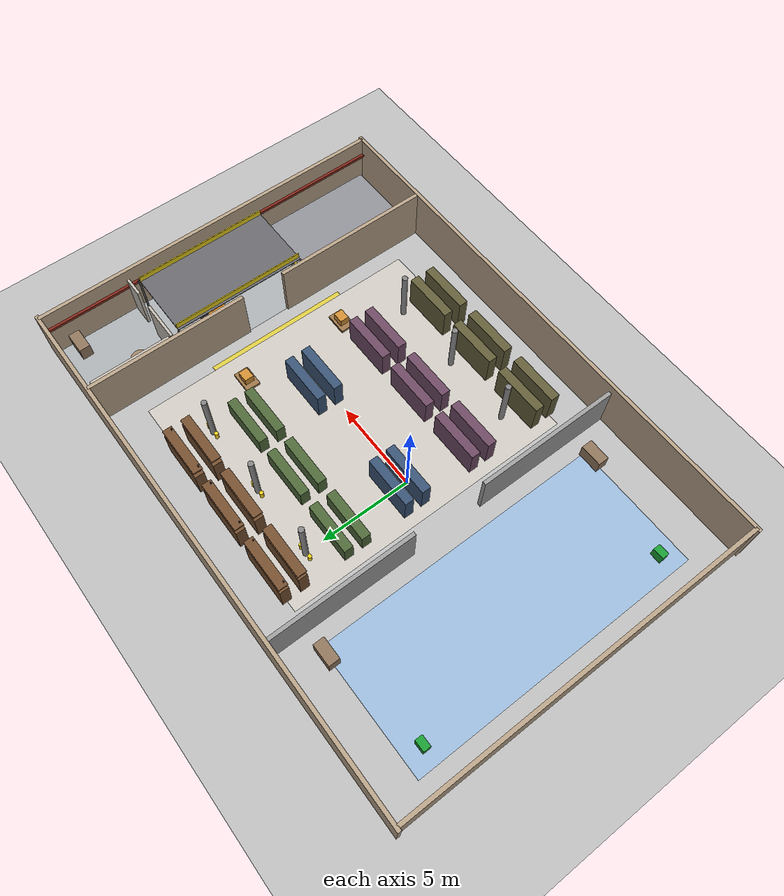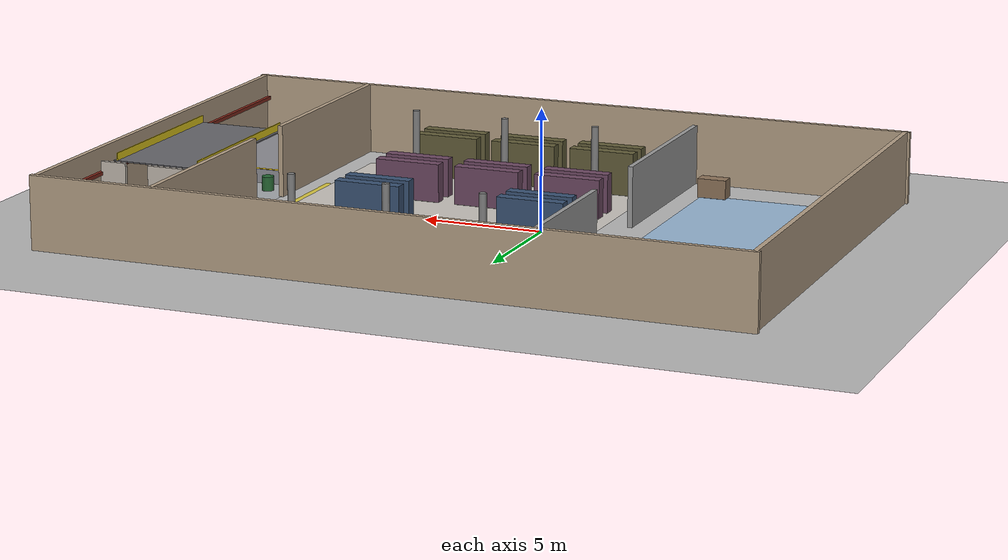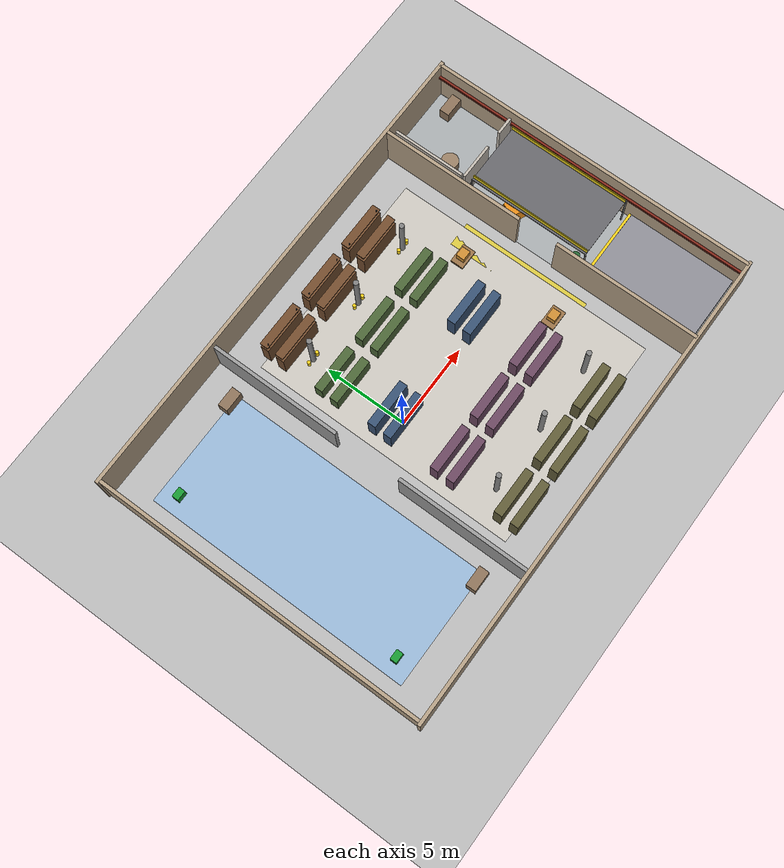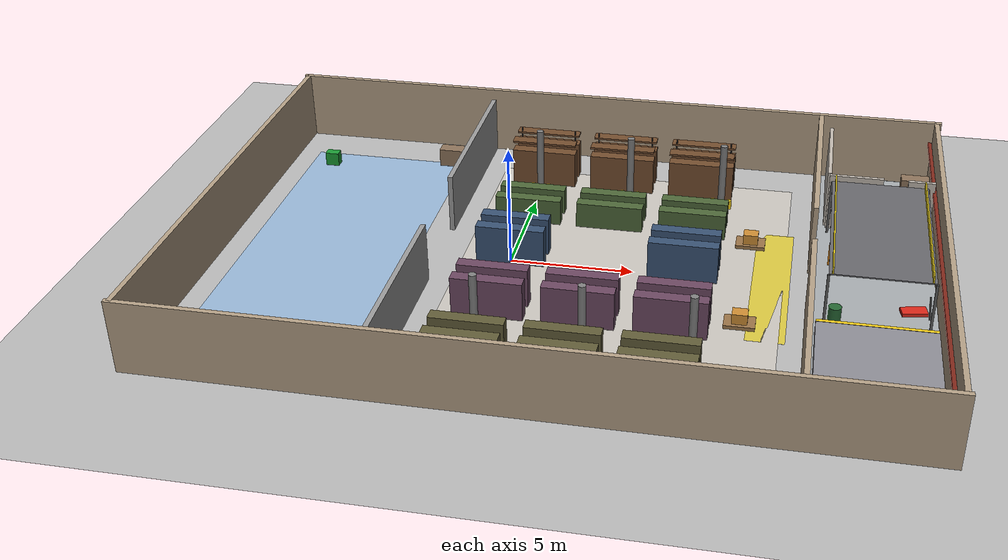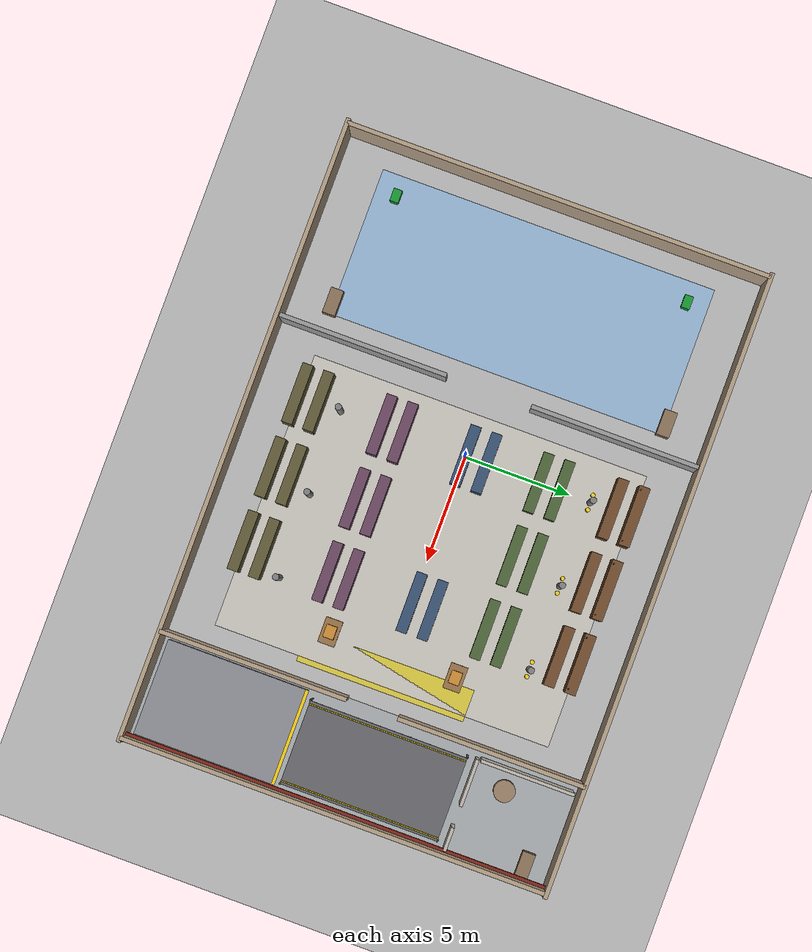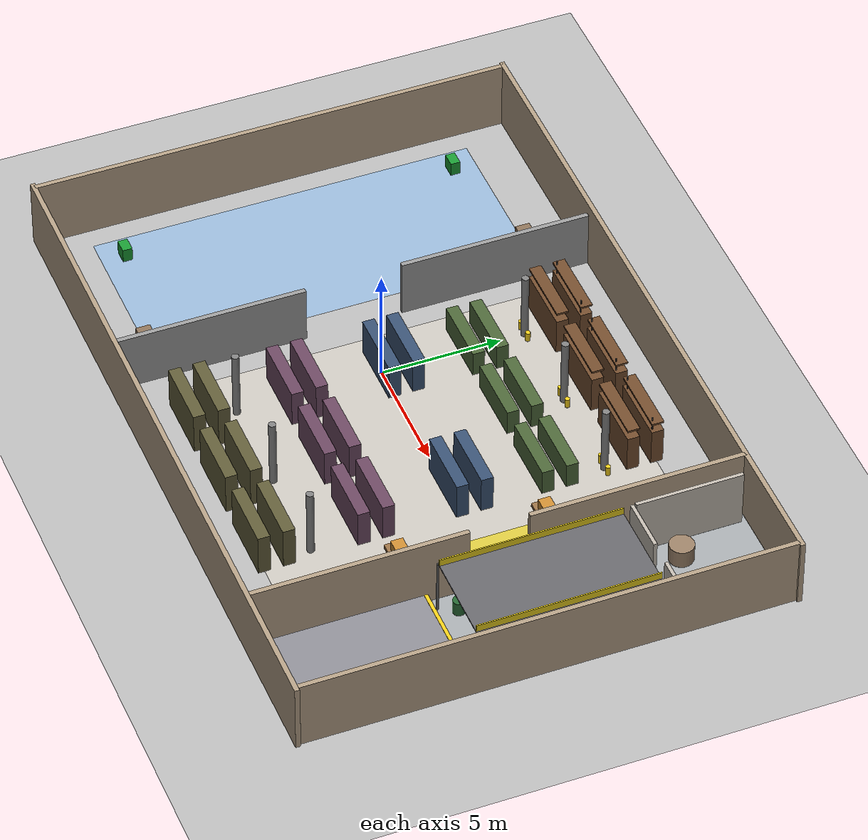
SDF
<sdf version="1.8">
 <world name="warehouse">
  <physics name="4ms" type="ignored">
   <max_step_size>0.004</max_step_size>
   <real_time_factor>1</real_time_factor>
  </physics>
  <plugin filename="ignition-gazebo-physics-system" name="ignition::gazebo::systems::Physics"/>
  <plugin filename="ignition-gazebo-user-commands-system" name="ignition::gazebo::systems::UserCommands"/>
  <plugin filename="ignition-gazebo-scene-broadcaster-system" name="ignition::gazebo::systems::SceneBroadcaster"/>
  <plugin filename="ignition-gazebo-sensors-system" name="ignition::gazebo::systems::Sensors">
   <render_engine>ogre2</render_engine>
  </plugin>
  <plugin filename="ignition-gazebo-contact-system" name="ignition::gazebo::systems::Contact"/>
  <plugin filename="ignition-gazebo-imu-system" name="ignition::gazebo::systems::Imu"/>
  <light name="sun" type="directional">
   <pose>0 0 20 0 0 0</pose>
   <intensity>1</intensity>
   <direction>-0.2 0.1 -0.9</direction>
   <diffuse>1.0 0.98 0.95 1</diffuse>
   <specular>0.3 0.3 0.3 1</specular>
  </light>
  <light name="light_west" type="point">
   <pose>-7 0 4 0 0 0</pose>
   <diffuse>0.8 0.8 0.9 1</diffuse>
   <specular>0.1 0.1 0.1 1</specular>
   <attenuation><range>15</range><linear>0.05</linear></attenuation>
  </light>
  <light name="light_east" type="point">
   <pose>5 0 4 0 0 0</pose>
   <diffuse>0.8 0.8 0.9 1</diffuse>
   <specular>0.1 0.1 0.1 1</specular>
   <attenuation><range>15</range><linear>0.05</linear></attenuation>
  </light>
  <light name="light_bay_n" type="point">
   <pose>14.5 4 4 0 0 0</pose>
   <diffuse>0.8 0.8 0.9 1</diffuse>
   <specular>0.1 0.1 0.1 1</specular>
   <attenuation><range>15</range><linear>0.05</linear></attenuation>
  </light>
  <light name="light_bay_s" type="point">
   <pose>14.5 -6 4 0 0 0</pose>
   <diffuse>0.8 0.8 0.9 1</diffuse>
   <specular>0.1 0.1 0.1 1</specular>
   <attenuation><range>15</range><linear>0.05</linear></attenuation>
  </light>
  <model name="ground_plane">
   <static>true</static>
   <link name="link">
    <collision name="c"><geometry><plane><normal>0 0 1</normal><size>100 100</size></plane></geometry></collision>
    <visual name="v">
     <geometry><plane><normal>0 0 1</normal><size>100 100</size></plane></geometry>
     <material><ambient>0.72 0.72 0.72 1</ambient><diffuse>0.72 0.72 0.72 1</diffuse></material>
    </visual>
   </link>
  </model>
  <model name="zone_staging">
   <static>true</static>
   <pose>-7.5 0 0.003 0 0 0</pose>
   <link name="link">
    <collision name="c"><geometry><box><size>7 16 0.005</size></box></geometry></collision>
    <visual name="v">
     <geometry><box><size>7 16 0.005</size></box></geometry>
     <material><ambient>0.55 0.75 0.95 0.6</ambient><diffuse>0.55 0.75 0.95 0.6</diffuse></material>
    </visual>
   </link>
  </model>
  <model name="zone_storage">
   <static>true</static>
   <pose>4.5 0 0.003 0 0 0</pose>
   <link name="link">
    <collision name="c"><geometry><box><size>13 16 0.005</size></box></geometry></collision>
    <visual name="v">
     <geometry><box><size>13 16 0.005</size></box></geometry>
     <material><ambient>0.88 0.85 0.80 0.6</ambient><diffuse>0.88 0.85 0.80 0.6</diffuse></material>
    </visual>
   </link>
  </model>
  <model name="zone_dock">
   <static>true</static>
   <pose>10.5 0 0.003 0 0 0</pose>
   <link name="link">
    <collision name="c"><geometry><box><size>1.5 8 0.005</size></box></geometry></collision>
    <visual name="v">
     <geometry><box><size>1.5 8 0.005</size></box></geometry>
     <material><ambient>0.95 0.85 0.1 0.7</ambient><diffuse>0.95 0.85 0.1 0.7</diffuse></material>
    </visual>
   </link>
  </model>
  <model name="zone_bay">
   <static>true</static>
   <pose>14.5 0 0.003 0 0 0</pose>
   <link name="link">
    <collision name="c"><geometry><box><size>5 20 0.005</size></box></geometry></collision>
    <visual name="v">
     <geometry><box><size>5 20 0.005</size></box></geometry>
     <material><ambient>0.65 0.68 0.70 0.6</ambient><diffuse>0.65 0.68 0.70 0.6</diffuse></material>
    </visual>
   </link>
  </model>
  <model name="wall_north">
   <static>true</static>
   <pose>2.5 10 1.5 0 0 0</pose>
   <link name="link">
    <collision name="c"><geometry><box><size>29.4 0.2 3</size></box></geometry></collision>
    <visual name="v">
     <geometry><box><size>29.4 0.2 3</size></box></geometry>
     <material><ambient>0.70 0.62 0.52 1</ambient><diffuse>0.70 0.62 0.52 1</diffuse></material>
    </visual>
   </link>
  </model>
  <model name="wall_south">
   <static>true</static>
   <pose>2.5 -10 1.5 0 0 0</pose>
   <link name="link">
    <collision name="c"><geometry><box><size>29.4 0.2 3</size></box></geometry></collision>
    <visual name="v">
     <geometry><box><size>29.4 0.2 3</size></box></geometry>
     <material><ambient>0.70 0.62 0.52 1</ambient><diffuse>0.70 0.62 0.52 1</diffuse></material>
    </visual>
   </link>
  </model>
  <model name="wall_east_n">
   <static>true</static>
   <pose>12 5.6 1.5 0 0 0</pose>
   <link name="link">
    <collision name="c"><geometry><box><size>0.2 8.8 3</size></box></geometry></collision>
    <visual name="v">
     <geometry><box><size>0.2 8.8 3</size></box></geometry>
     <material><ambient>0.70 0.62 0.52 1</ambient><diffuse>0.70 0.62 0.52 1</diffuse></material>
    </visual>
   </link>
  </model>
  <model name="wall_east_s">
   <static>true</static>
   <pose>12 -5.6 1.5 0 0 0</pose>
   <link name="link">
    <collision name="c"><geometry><box><size>0.2 8.8 3</size></box></geometry></collision>
    <visual name="v">
     <geometry><box><size>0.2 8.8 3</size></box></geometry>
     <material><ambient>0.70 0.62 0.52 1</ambient><diffuse>0.70 0.62 0.52 1</diffuse></material>
    </visual>
   </link>
  </model>
  <model name="wall_east_far">
   <static>true</static>
   <pose>17 0 1.5 0 0 0</pose>
   <link name="link">
    <collision name="c"><geometry><box><size>0.2 20 3</size></box></geometry></collision>
    <visual name="v">
     <geometry><box><size>0.2 20 3</size></box></geometry>
     <material><ambient>0.70 0.62 0.52 1</ambient><diffuse>0.70 0.62 0.52 1</diffuse></material>
    </visual>
   </link>
  </model>
  <model name="wall_west">
   <static>true</static>
   <pose>-12 0 1.5 0 0 0</pose>
   <link name="link">
    <collision name="c"><geometry><box><size>0.2 20 3</size></box></geometry></collision>
    <visual name="v">
     <geometry><box><size>0.2 20 3</size></box></geometry>
     <material><ambient>0.70 0.62 0.52 1</ambient><diffuse>0.70 0.62 0.52 1</diffuse></material>
    </visual>
   </link>
  </model>
  <model name="sep_north">
   <static>true</static>
   <pose>-3 6 1.25 0 0 0</pose>
   <link name="link">
    <collision name="c"><geometry><box><size>0.2 8 2.5</size></box></geometry></collision>
    <visual name="v">
     <geometry><box><size>0.2 8 2.5</size></box></geometry>
     <material><ambient>0.60 0.60 0.60 1</ambient><diffuse>0.60 0.60 0.60 1</diffuse></material>
    </visual>
   </link>
  </model>
  <model name="sep_south">
   <static>true</static>
   <pose>-3 -6 1.25 0 0 0</pose>
   <link name="link">
    <collision name="c"><geometry><box><size>0.2 8 2.5</size></box></geometry></collision>
    <visual name="v">
     <geometry><box><size>0.2 8 2.5</size></box></geometry>
     <material><ambient>0.60 0.60 0.60 1</ambient><diffuse>0.60 0.60 0.60 1</diffuse></material>
    </visual>
   </link>
  </model>
  <model name="pillar_A1">
   <static>true</static>
   <pose>0  6 1.5 0 0 0</pose>
   <link name="link">
    <collision name="c">
     <geometry><cylinder><radius>0.15</radius><length>3</length></cylinder></geometry>
    </collision>
    <visual name="v">
     <geometry><cylinder><radius>0.15</radius><length>3</length></cylinder></geometry>
     <material><ambient>0.5 0.5 0.5 1</ambient><diffuse>0.5 0.5 0.5 1</diffuse></material>
    </visual>
   </link>
  </model>
  <model name="pillar_A2">
   <static>true</static>
   <pose>0 -6 1.5 0 0 0</pose>
   <link name="link">
    <collision name="c">
     <geometry><cylinder><radius>0.15</radius><length>3</length></cylinder></geometry>
    </collision>
    <visual name="v">
     <geometry><cylinder><radius>0.15</radius><length>3</length></cylinder></geometry>
     <material><ambient>0.5 0.5 0.5 1</ambient><diffuse>0.5 0.5 0.5 1</diffuse></material>
    </visual>
   </link>
  </model>
  <model name="pillar_B1">
   <static>true</static>
   <pose>4  6 1.5 0 0 0</pose>
   <link name="link">
    <collision name="c">
     <geometry><cylinder><radius>0.15</radius><length>3</length></cylinder></geometry>
    </collision>
    <visual name="v">
     <geometry><cylinder><radius>0.15</radius><length>3</length></cylinder></geometry>
     <material><ambient>0.5 0.5 0.5 1</ambient><diffuse>0.5 0.5 0.5 1</diffuse></material>
    </visual>
   </link>
  </model>
  <model name="pillar_B2">
   <static>true</static>
   <pose>4 -6 1.5 0 0 0</pose>
   <link name="link">
    <collision name="c">
     <geometry><cylinder><radius>0.15</radius><length>3</length></cylinder></geometry>
    </collision>
    <visual name="v">
     <geometry><cylinder><radius>0.15</radius><length>3</length></cylinder></geometry>
     <material><ambient>0.5 0.5 0.5 1</ambient><diffuse>0.5 0.5 0.5 1</diffuse></material>
    </visual>
   </link>
  </model>
  <model name="pillar_C1">
   <static>true</static>
   <pose>8  6 1.5 0 0 0</pose>
   <link name="link">
    <collision name="c">
     <geometry><cylinder><radius>0.15</radius><length>3</length></cylinder></geometry>
    </collision>
    <visual name="v">
     <geometry><cylinder><radius>0.15</radius><length>3</length></cylinder></geometry>
     <material><ambient>0.5 0.5 0.5 1</ambient><diffuse>0.5 0.5 0.5 1</diffuse></material>
    </visual>
   </link>
  </model>
  <model name="pillar_C2">
   <static>true</static>
   <pose>8 -6 1.5 0 0 0</pose>
   <link name="link">
    <collision name="c">
     <geometry><cylinder><radius>0.15</radius><length>3</length></cylinder></geometry>
    </collision>
    <visual name="v">
     <geometry><cylinder><radius>0.15</radius><length>3</length></cylinder></geometry>
     <material><ambient>0.5 0.5 0.5 1</ambient><diffuse>0.5 0.5 0.5 1</diffuse></material>
    </visual>
   </link>
  </model>
  <model name="sh_1f_1">
   <static>true</static>
   <pose>0   8.0 0.8 0 0 0</pose>
   <link name="link">
    <collision name="c"><geometry><box><size>2.8 0.5 1.6</size></box></geometry></collision>
    <visual name="v">
     <geometry><box><size>2.8 0.5 1.6</size></box></geometry>
     <material><ambient>0.45 0.30 0.18 1</ambient><diffuse>0.45 0.30 0.18 1</diffuse></material>
    </visual>
   </link>
  </model>
  <model name="sh_1f_2">
   <static>true</static>
   <pose>3.5 8.0 0.8 0 0 0</pose>
   <link name="link">
    <collision name="c"><geometry><box><size>2.8 0.5 1.6</size></box></geometry></collision>
    <visual name="v">
     <geometry><box><size>2.8 0.5 1.6</size></box></geometry>
     <material><ambient>0.45 0.30 0.18 1</ambient><diffuse>0.45 0.30 0.18 1</diffuse></material>
    </visual>
   </link>
  </model>
  <model name="sh_1f_3">
   <static>true</static>
   <pose>7.0 8.0 0.8 0 0 0</pose>
   <link name="link">
    <collision name="c"><geometry><box><size>2.8 0.5 1.6</size></box></geometry></collision>
    <visual name="v">
     <geometry><box><size>2.8 0.5 1.6</size></box></geometry>
     <material><ambient>0.45 0.30 0.18 1</ambient><diffuse>0.45 0.30 0.18 1</diffuse></material>
    </visual>
   </link>
  </model>
  <model name="sh_1b_1">
   <static>true</static>
   <pose>0   7.0 0.8 0 0 0</pose>
   <link name="link">
    <collision name="c"><geometry><box><size>2.8 0.5 1.6</size></box></geometry></collision>
    <visual name="v">
     <geometry><box><size>2.8 0.5 1.6</size></box></geometry>
     <material><ambient>0.45 0.30 0.18 1</ambient><diffuse>0.45 0.30 0.18 1</diffuse></material>
    </visual>
   </link>
  </model>
  <model name="sh_1b_2">
   <static>true</static>
   <pose>3.5 7.0 0.8 0 0 0</pose>
   <link name="link">
    <collision name="c"><geometry><box><size>2.8 0.5 1.6</size></box></geometry></collision>
    <visual name="v">
     <geometry><box><size>2.8 0.5 1.6</size></box></geometry>
     <material><ambient>0.45 0.30 0.18 1</ambient><diffuse>0.45 0.30 0.18 1</diffuse></material>
    </visual>
   </link>
  </model>
  <model name="sh_1b_3">
   <static>true</static>
   <pose>7.0 7.0 0.8 0 0 0</pose>
   <link name="link">
    <collision name="c"><geometry><box><size>2.8 0.5 1.6</size></box></geometry></collision>
    <visual name="v">
     <geometry><box><size>2.8 0.5 1.6</size></box></geometry>
     <material><ambient>0.45 0.30 0.18 1</ambient><diffuse>0.45 0.30 0.18 1</diffuse></material>
    </visual>
   </link>
  </model>
  <model name="sh_1f_1_post_a">
   <static>true</static>
   <pose>-1.2 7.85 1.1 0 0 0</pose>
   <link name="link">
    <collision name="c">
     <geometry><cylinder><radius>0.03</radius><length>2.2</length></cylinder></geometry>
    </collision>
    <visual name="v">
     <geometry><cylinder><radius>0.03</radius><length>2.2</length></cylinder></geometry>
     <material><ambient>0.3 0.3 0.3 1</ambient><diffuse>0.3 0.3 0.3 1</diffuse></material>
    </visual>
   </link>
  </model>
  <model name="sh_1f_1_post_b">
   <static>true</static>
   <pose>1.2 7.85 1.1 0 0 0</pose>
   <link name="link">
    <collision name="c">
     <geometry><cylinder><radius>0.03</radius><length>2.2</length></cylinder></geometry>
    </collision>
    <visual name="v">
     <geometry><cylinder><radius>0.03</radius><length>2.2</length></cylinder></geometry>
     <material><ambient>0.3 0.3 0.3 1</ambient><diffuse>0.3 0.3 0.3 1</diffuse></material>
    </visual>
   </link>
  </model>
  <model name="sh_1f_1_upper">
   <static>true</static>
   <pose>0 8.0 2.0 0 0 0</pose>
   <link name="link">
    <collision name="c"><geometry><box><size>2.8 0.5 0.08</size></box></geometry></collision>
    <visual name="v">
     <geometry><box><size>2.8 0.5 0.08</size></box></geometry>
     <material><ambient>0.45 0.30 0.18 1</ambient><diffuse>0.45 0.30 0.18 1</diffuse></material>
    </visual>
   </link>
  </model>
  <model name="sh_1f_2_post_a">
   <static>true</static>
   <pose>2.3 7.85 1.1 0 0 0</pose>
   <link name="link">
    <collision name="c">
     <geometry><cylinder><radius>0.03</radius><length>2.2</length></cylinder></geometry>
    </collision>
    <visual name="v">
     <geometry><cylinder><radius>0.03</radius><length>2.2</length></cylinder></geometry>
     <material><ambient>0.3 0.3 0.3 1</ambient><diffuse>0.3 0.3 0.3 1</diffuse></material>
    </visual>
   </link>
  </model>
  <model name="sh_1f_2_post_b">
   <static>true</static>
   <pose>4.7 7.85 1.1 0 0 0</pose>
   <link name="link">
    <collision name="c">
     <geometry><cylinder><radius>0.03</radius><length>2.2</length></cylinder></geometry>
    </collision>
    <visual name="v">
     <geometry><cylinder><radius>0.03</radius><length>2.2</length></cylinder></geometry>
     <material><ambient>0.3 0.3 0.3 1</ambient><diffuse>0.3 0.3 0.3 1</diffuse></material>
    </visual>
   </link>
  </model>
  <model name="sh_1f_2_upper">
   <static>true</static>
   <pose>3.5 8.0 2.0 0 0 0</pose>
   <link name="link">
    <collision name="c"><geometry><box><size>2.8 0.5 0.08</size></box></geometry></collision>
    <visual name="v">
     <geometry><box><size>2.8 0.5 0.08</size></box></geometry>
     <material><ambient>0.45 0.30 0.18 1</ambient><diffuse>0.45 0.30 0.18 1</diffuse></material>
    </visual>
   </link>
  </model>
  <model name="sh_1f_3_post_a">
   <static>true</static>
   <pose>5.8 7.85 1.1 0 0 0</pose>
   <link name="link">
    <collision name="c">
     <geometry><cylinder><radius>0.03</radius><length>2.2</length></cylinder></geometry>
    </collision>
    <visual name="v">
     <geometry><cylinder><radius>0.03</radius><length>2.2</length></cylinder></geometry>
     <material><ambient>0.3 0.3 0.3 1</ambient><diffuse>0.3 0.3 0.3 1</diffuse></material>
    </visual>
   </link>
  </model>
  <model name="sh_1f_3_post_b">
   <static>true</static>
   <pose>8.2 7.85 1.1 0 0 0</pose>
   <link name="link">
    <collision name="c">
     <geometry><cylinder><radius>0.03</radius><length>2.2</length></cylinder></geometry>
    </collision>
    <visual name="v">
     <geometry><cylinder><radius>0.03</radius><length>2.2</length></cylinder></geometry>
     <material><ambient>0.3 0.3 0.3 1</ambient><diffuse>0.3 0.3 0.3 1</diffuse></material>
    </visual>
   </link>
  </model>
  <model name="sh_1f_3_upper">
   <static>true</static>
   <pose>7.0 8.0 2.0 0 0 0</pose>
   <link name="link">
    <collision name="c"><geometry><box><size>2.8 0.5 0.08</size></box></geometry></collision>
    <visual name="v">
     <geometry><box><size>2.8 0.5 0.08</size></box></geometry>
     <material><ambient>0.45 0.30 0.18 1</ambient><diffuse>0.45 0.30 0.18 1</diffuse></material>
    </visual>
   </link>
  </model>
  <model name="sh_1b_1_upper">
   <static>true</static>
   <pose>0   7.0 2.0 0 0 0</pose>
   <link name="link">
    <collision name="c"><geometry><box><size>2.8 0.5 0.08</size></box></geometry></collision>
    <visual name="v">
     <geometry><box><size>2.8 0.5 0.08</size></box></geometry>
     <material><ambient>0.45 0.30 0.18 1</ambient><diffuse>0.45 0.30 0.18 1</diffuse></material>
    </visual>
   </link>
  </model>
  <model name="sh_1b_2_upper">
   <static>true</static>
   <pose>3.5 7.0 2.0 0 0 0</pose>
   <link name="link">
    <collision name="c"><geometry><box><size>2.8 0.5 0.08</size></box></geometry></collision>
    <visual name="v">
     <geometry><box><size>2.8 0.5 0.08</size></box></geometry>
     <material><ambient>0.45 0.30 0.18 1</ambient><diffuse>0.45 0.30 0.18 1</diffuse></material>
    </visual>
   </link>
  </model>
  <model name="sh_1b_3_upper">
   <static>true</static>
   <pose>7.0 7.0 2.0 0 0 0</pose>
   <link name="link">
    <collision name="c"><geometry><box><size>2.8 0.5 0.08</size></box></geometry></collision>
    <visual name="v">
     <geometry><box><size>2.8 0.5 0.08</size></box></geometry>
     <material><ambient>0.45 0.30 0.18 1</ambient><diffuse>0.45 0.30 0.18 1</diffuse></material>
    </visual>
   </link>
  </model>
  <model name="sh_2f_1">
   <static>true</static>
   <pose>0   4.5 0.55 0 0 0</pose>
   <link name="link">
    <collision name="c"><geometry><box><size>2.8 0.5 1.1</size></box></geometry></collision>
    <visual name="v">
     <geometry><box><size>2.8 0.5 1.1</size></box></geometry>
     <material><ambient>0.30 0.40 0.22 1</ambient><diffuse>0.30 0.40 0.22 1</diffuse></material>
    </visual>
   </link>
  </model>
  <model name="sh_2f_2">
   <static>true</static>
   <pose>3.5 4.5 0.55 0 0 0</pose>
   <link name="link">
    <collision name="c"><geometry><box><size>2.8 0.5 1.1</size></box></geometry></collision>
    <visual name="v">
     <geometry><box><size>2.8 0.5 1.1</size></box></geometry>
     <material><ambient>0.30 0.40 0.22 1</ambient><diffuse>0.30 0.40 0.22 1</diffuse></material>
    </visual>
   </link>
  </model>
  <model name="sh_2f_3">
   <static>true</static>
   <pose>7.0 4.5 0.55 0 0 0</pose>
   <link name="link">
    <collision name="c"><geometry><box><size>2.8 0.5 1.1</size></box></geometry></collision>
    <visual name="v">
     <geometry><box><size>2.8 0.5 1.1</size></box></geometry>
     <material><ambient>0.30 0.40 0.22 1</ambient><diffuse>0.30 0.40 0.22 1</diffuse></material>
    </visual>
   </link>
  </model>
  <model name="sh_2b_1">
   <static>true</static>
   <pose>0   3.5 0.55 0 0 0</pose>
   <link name="link">
    <collision name="c"><geometry><box><size>2.8 0.5 1.1</size></box></geometry></collision>
    <visual name="v">
     <geometry><box><size>2.8 0.5 1.1</size></box></geometry>
     <material><ambient>0.30 0.40 0.22 1</ambient><diffuse>0.30 0.40 0.22 1</diffuse></material>
    </visual>
   </link>
  </model>
  <model name="sh_2b_2">
   <static>true</static>
   <pose>3.5 3.5 0.55 0 0 0</pose>
   <link name="link">
    <collision name="c"><geometry><box><size>2.8 0.5 1.1</size></box></geometry></collision>
    <visual name="v">
     <geometry><box><size>2.8 0.5 1.1</size></box></geometry>
     <material><ambient>0.30 0.40 0.22 1</ambient><diffuse>0.30 0.40 0.22 1</diffuse></material>
    </visual>
   </link>
  </model>
  <model name="sh_2b_3">
   <static>true</static>
   <pose>7.0 3.5 0.55 0 0 0</pose>
   <link name="link">
    <collision name="c"><geometry><box><size>2.8 0.5 1.1</size></box></geometry></collision>
    <visual name="v">
     <geometry><box><size>2.8 0.5 1.1</size></box></geometry>
     <material><ambient>0.30 0.40 0.22 1</ambient><diffuse>0.30 0.40 0.22 1</diffuse></material>
    </visual>
   </link>
  </model>
  <model name="sh_3f_1">
   <static>true</static>
   <pose>0   1.0 0.8 0 0 0</pose>
   <link name="link">
    <collision name="c"><geometry><box><size>2.8 0.5 1.6</size></box></geometry></collision>
    <visual name="v">
     <geometry><box><size>2.8 0.5 1.6</size></box></geometry>
     <material><ambient>0.22 0.32 0.45 1</ambient><diffuse>0.22 0.32 0.45 1</diffuse></material>
    </visual>
   </link>
  </model>
  <model name="sh_3f_3">
   <static>true</static>
   <pose>7.0 1.0 0.8 0 0 0</pose>
   <link name="link">
    <collision name="c"><geometry><box><size>2.8 0.5 1.6</size></box></geometry></collision>
    <visual name="v">
     <geometry><box><size>2.8 0.5 1.6</size></box></geometry>
     <material><ambient>0.22 0.32 0.45 1</ambient><diffuse>0.22 0.32 0.45 1</diffuse></material>
    </visual>
   </link>
  </model>
  <model name="sh_3b_1">
   <static>true</static>
   <pose>0   0.0 0.8 0 0 0</pose>
   <link name="link">
    <collision name="c"><geometry><box><size>2.8 0.5 1.6</size></box></geometry></collision>
    <visual name="v">
     <geometry><box><size>2.8 0.5 1.6</size></box></geometry>
     <material><ambient>0.22 0.32 0.45 1</ambient><diffuse>0.22 0.32 0.45 1</diffuse></material>
    </visual>
   </link>
  </model>
  <model name="sh_3b_3">
   <static>true</static>
   <pose>7.0 0.0 0.8 0 0 0</pose>
   <link name="link">
    <collision name="c"><geometry><box><size>2.8 0.5 1.6</size></box></geometry></collision>
    <visual name="v">
     <geometry><box><size>2.8 0.5 1.6</size></box></geometry>
     <material><ambient>0.22 0.32 0.45 1</ambient><diffuse>0.22 0.32 0.45 1</diffuse></material>
    </visual>
   </link>
  </model>
  <model name="sh_4f_1">
   <static>true</static>
   <pose>0  -3.0 0.8 0 0 0</pose>
   <link name="link">
    <collision name="c"><geometry><box><size>2.8 0.5 1.6</size></box></geometry></collision>
    <visual name="v">
     <geometry><box><size>2.8 0.5 1.6</size></box></geometry>
     <material><ambient>0.42 0.28 0.38 1</ambient><diffuse>0.42 0.28 0.38 1</diffuse></material>
    </visual>
   </link>
  </model>
  <model name="sh_4f_2">
   <static>true</static>
   <pose>3.5 -3.0 0.8 0 0 0</pose>
   <link name="link">
    <collision name="c"><geometry><box><size>2.8 0.5 1.6</size></box></geometry></collision>
    <visual name="v">
     <geometry><box><size>2.8 0.5 1.6</size></box></geometry>
     <material><ambient>0.42 0.28 0.38 1</ambient><diffuse>0.42 0.28 0.38 1</diffuse></material>
    </visual>
   </link>
  </model>
  <model name="sh_4f_3">
   <static>true</static>
   <pose>7.0 -3.0 0.8 0 0 0</pose>
   <link name="link">
    <collision name="c"><geometry><box><size>2.8 0.5 1.6</size></box></geometry></collision>
    <visual name="v">
     <geometry><box><size>2.8 0.5 1.6</size></box></geometry>
     <material><ambient>0.42 0.28 0.38 1</ambient><diffuse>0.42 0.28 0.38 1</diffuse></material>
    </visual>
   </link>
  </model>
  <model name="sh_4b_1">
   <static>true</static>
   <pose>0  -4.0 0.8 0 0 0</pose>
   <link name="link">
    <collision name="c"><geometry><box><size>2.8 0.5 1.6</size></box></geometry></collision>
    <visual name="v">
     <geometry><box><size>2.8 0.5 1.6</size></box></geometry>
     <material><ambient>0.42 0.28 0.38 1</ambient><diffuse>0.42 0.28 0.38 1</diffuse></material>
    </visual>
   </link>
  </model>
  <model name="sh_4b_2">
   <static>true</static>
   <pose>3.5 -4.0 0.8 0 0 0</pose>
   <link name="link">
    <collision name="c"><geometry><box><size>2.8 0.5 1.6</size></box></geometry></collision>
    <visual name="v">
     <geometry><box><size>2.8 0.5 1.6</size></box></geometry>
     <material><ambient>0.42 0.28 0.38 1</ambient><diffuse>0.42 0.28 0.38 1</diffuse></material>
    </visual>
   </link>
  </model>
  <model name="sh_4b_3">
   <static>true</static>
   <pose>7.0 -4.0 0.8 0 0 0</pose>
   <link name="link">
    <collision name="c"><geometry><box><size>2.8 0.5 1.6</size></box></geometry></collision>
    <visual name="v">
     <geometry><box><size>2.8 0.5 1.6</size></box></geometry>
     <material><ambient>0.42 0.28 0.38 1</ambient><diffuse>0.42 0.28 0.38 1</diffuse></material>
    </visual>
   </link>
  </model>
  <model name="sh_5f_1">
   <static>true</static>
   <pose>0  -7.0 0.9 0 0 0</pose>
   <link name="link">
    <collision name="c"><geometry><box><size>2.8 0.5 1.8</size></box></geometry></collision>
    <visual name="v">
     <geometry><box><size>2.8 0.5 1.8</size></box></geometry>
     <material><ambient>0.38 0.36 0.22 1</ambient><diffuse>0.38 0.36 0.22 1</diffuse></material>
    </visual>
   </link>
  </model>
  <model name="sh_5f_2">
   <static>true</static>
   <pose>3.5 -7.0 0.9 0 0 0</pose>
   <link name="link">
    <collision name="c"><geometry><box><size>2.8 0.5 1.8</size></box></geometry></collision>
    <visual name="v">
     <geometry><box><size>2.8 0.5 1.8</size></box></geometry>
     <material><ambient>0.38 0.36 0.22 1</ambient><diffuse>0.38 0.36 0.22 1</diffuse></material>
    </visual>
   </link>
  </model>
  <model name="sh_5f_3">
   <static>true</static>
   <pose>7.0 -7.0 0.9 0 0 0</pose>
   <link name="link">
    <collision name="c"><geometry><box><size>2.8 0.5 1.8</size></box></geometry></collision>
    <visual name="v">
     <geometry><box><size>2.8 0.5 1.8</size></box></geometry>
     <material><ambient>0.38 0.36 0.22 1</ambient><diffuse>0.38 0.36 0.22 1</diffuse></material>
    </visual>
   </link>
  </model>
  <model name="sh_5b_1">
   <static>true</static>
   <pose>0  -8.0 0.9 0 0 0</pose>
   <link name="link">
    <collision name="c"><geometry><box><size>2.8 0.5 1.8</size></box></geometry></collision>
    <visual name="v">
     <geometry><box><size>2.8 0.5 1.8</size></box></geometry>
     <material><ambient>0.38 0.36 0.22 1</ambient><diffuse>0.38 0.36 0.22 1</diffuse></material>
    </visual>
   </link>
  </model>
  <model name="sh_5b_2">
   <static>true</static>
   <pose>3.5 -8.0 0.9 0 0 0</pose>
   <link name="link">
    <collision name="c"><geometry><box><size>2.8 0.5 1.8</size></box></geometry></collision>
    <visual name="v">
     <geometry><box><size>2.8 0.5 1.8</size></box></geometry>
     <material><ambient>0.38 0.36 0.22 1</ambient><diffuse>0.38 0.36 0.22 1</diffuse></material>
    </visual>
   </link>
  </model>
  <model name="sh_5b_3">
   <static>true</static>
   <pose>7.0 -8.0 0.9 0 0 0</pose>
   <link name="link">
    <collision name="c"><geometry><box><size>2.8 0.5 1.8</size></box></geometry></collision>
    <visual name="v">
     <geometry><box><size>2.8 0.5 1.8</size></box></geometry>
     <material><ambient>0.38 0.36 0.22 1</ambient><diffuse>0.38 0.36 0.22 1</diffuse></material>
    </visual>
   </link>
  </model>
  <model name="charger_nw">
   <static>true</static>
   <pose>-10 7 0.3 0 0 0</pose>
   <link name="link">
    <collision name="c"><geometry><box><size>0.6 0.4 0.6</size></box></geometry></collision>
    <visual name="v">
     <geometry><box><size>0.6 0.4 0.6</size></box></geometry>
     <material><ambient>0.1 0.6 0.2 1</ambient><diffuse>0.1 0.6 0.2 1</diffuse></material>
    </visual>
   </link>
  </model>
  <model name="charger_sw">
   <static>true</static>
   <pose>-10 -7 0.3 0 0 0</pose>
   <link name="link">
    <collision name="c"><geometry><box><size>0.6 0.4 0.6</size></box></geometry></collision>
    <visual name="v">
     <geometry><box><size>0.6 0.4 0.6</size></box></geometry>
     <material><ambient>0.1 0.6 0.2 1</ambient><diffuse>0.1 0.6 0.2 1</diffuse></material>
    </visual>
   </link>
  </model>
  <model name="desk_1">
   <static>true</static>
   <pose>-4.5 8 0.4 0 0 0</pose>
   <link name="link">
    <collision name="c"><geometry><box><size>1.2 0.6 0.8</size></box></geometry></collision>
    <visual name="v">
     <geometry><box><size>1.2 0.6 0.8</size></box></geometry>
     <material><ambient>0.55 0.45 0.35 1</ambient><diffuse>0.55 0.45 0.35 1</diffuse></material>
    </visual>
   </link>
  </model>
  <model name="desk_2">
   <static>true</static>
   <pose>-4.5 -8 0.4 0 0 0</pose>
   <link name="link">
    <collision name="c"><geometry><box><size>1.2 0.6 0.8</size></box></geometry></collision>
    <visual name="v">
     <geometry><box><size>1.2 0.6 0.8</size></box></geometry>
     <material><ambient>0.55 0.45 0.35 1</ambient><diffuse>0.55 0.45 0.35 1</diffuse></material>
    </visual>
   </link>
  </model>
  <model name="pallet_1">
   <static>true</static>
   <pose>9.5  3 0.1 0 0 0</pose>
   <link name="link">
    <collision name="c"><geometry><box><size>1.2 0.8 0.15</size></box></geometry></collision>
    <visual name="v">
     <geometry><box><size>1.2 0.8 0.15</size></box></geometry>
     <material><ambient>0.60 0.45 0.28 1</ambient><diffuse>0.60 0.45 0.28 1</diffuse></material>
    </visual>
   </link>
  </model>
  <model name="pallet_2">
   <static>true</static>
   <pose>9.5 -3 0.1 0 0 0</pose>
   <link name="link">
    <collision name="c"><geometry><box><size>1.2 0.8 0.15</size></box></geometry></collision>
    <visual name="v">
     <geometry><box><size>1.2 0.8 0.15</size></box></geometry>
     <material><ambient>0.60 0.45 0.28 1</ambient><diffuse>0.60 0.45 0.28 1</diffuse></material>
    </visual>
   </link>
  </model>
  <model name="box_1">
   <static>true</static>
   <pose>9.5  3 0.375 0 0 0</pose>
   <link name="link">
    <collision name="c"><geometry><box><size>0.6 0.5 0.45</size></box></geometry></collision>
    <visual name="v">
     <geometry><box><size>0.6 0.5 0.45</size></box></geometry>
     <material><ambient>0.80 0.55 0.20 1</ambient><diffuse>0.80 0.55 0.20 1</diffuse></material>
    </visual>
   </link>
  </model>
  <model name="box_2">
   <static>true</static>
   <pose>9.5 -3 0.375 0 0 0</pose>
   <link name="link">
    <collision name="c"><geometry><box><size>0.6 0.5 0.45</size></box></geometry></collision>
    <visual name="v">
     <geometry><box><size>0.6 0.5 0.45</size></box></geometry>
     <material><ambient>0.80 0.55 0.20 1</ambient><diffuse>0.80 0.55 0.20 1</diffuse></material>
    </visual>
   </link>
  </model>
  <model name="bollard_A1_n">
   <static>true</static>
   <pose>0.35 6 0.2 0 0 0</pose>
   <link name="link">
    <collision name="c">
     <geometry><cylinder><radius>0.1</radius><length>0.4</length></cylinder></geometry>
    </collision>
    <visual name="v">
     <geometry><cylinder><radius>0.1</radius><length>0.4</length></cylinder></geometry>
     <material><ambient>0.95 0.8 0.1 1</ambient><diffuse>0.95 0.8 0.1 1</diffuse></material>
    </visual>
   </link>
  </model>
  <model name="bollard_A1_s">
   <static>true</static>
   <pose>-0.35 6 0.2 0 0 0</pose>
   <link name="link">
    <collision name="c">
     <geometry><cylinder><radius>0.1</radius><length>0.4</length></cylinder></geometry>
    </collision>
    <visual name="v">
     <geometry><cylinder><radius>0.1</radius><length>0.4</length></cylinder></geometry>
     <material><ambient>0.95 0.8 0.1 1</ambient><diffuse>0.95 0.8 0.1 1</diffuse></material>
    </visual>
   </link>
  </model>
  <model name="bollard_B1_n">
   <static>true</static>
   <pose>4.35 6 0.2 0 0 0</pose>
   <link name="link">
    <collision name="c">
     <geometry><cylinder><radius>0.1</radius><length>0.4</length></cylinder></geometry>
    </collision>
    <visual name="v">
     <geometry><cylinder><radius>0.1</radius><length>0.4</length></cylinder></geometry>
     <material><ambient>0.95 0.8 0.1 1</ambient><diffuse>0.95 0.8 0.1 1</diffuse></material>
    </visual>
   </link>
  </model>
  <model name="bollard_B1_s">
   <static>true</static>
   <pose>3.65 6 0.2 0 0 0</pose>
   <link name="link">
    <collision name="c">
     <geometry><cylinder><radius>0.1</radius><length>0.4</length></cylinder></geometry>
    </collision>
    <visual name="v">
     <geometry><cylinder><radius>0.1</radius><length>0.4</length></cylinder></geometry>
     <material><ambient>0.95 0.8 0.1 1</ambient><diffuse>0.95 0.8 0.1 1</diffuse></material>
    </visual>
   </link>
  </model>
  <model name="bollard_C1_n">
   <static>true</static>
   <pose>8.35 6 0.2 0 0 0</pose>
   <link name="link">
    <collision name="c">
     <geometry><cylinder><radius>0.1</radius><length>0.4</length></cylinder></geometry>
    </collision>
    <visual name="v">
     <geometry><cylinder><radius>0.1</radius><length>0.4</length></cylinder></geometry>
     <material><ambient>0.95 0.8 0.1 1</ambient><diffuse>0.95 0.8 0.1 1</diffuse></material>
    </visual>
   </link>
  </model>
  <model name="bollard_C1_s">
   <static>true</static>
   <pose>7.65 6 0.2 0 0 0</pose>
   <link name="link">
    <collision name="c">
     <geometry><cylinder><radius>0.1</radius><length>0.4</length></cylinder></geometry>
    </collision>
    <visual name="v">
     <geometry><cylinder><radius>0.1</radius><length>0.4</length></cylinder></geometry>
     <material><ambient>0.95 0.8 0.1 1</ambient><diffuse>0.95 0.8 0.1 1</diffuse></material>
    </visual>
   </link>
  </model>
  <model name="brk_wall_w">
   <static>true</static>
   <pose>12.5 7.5 1.25 0 0 0</pose>
   <link name="link">
    <collision name="c"><geometry><box><size>0.15 4.4 2.5</size></box></geometry></collision>
    <visual name="v">
     <geometry><box><size>0.15 4.4 2.5</size></box></geometry>
     <material><ambient>0.75 0.72 0.68 1</ambient><diffuse>0.75 0.72 0.68 1</diffuse></material>
    </visual>
   </link>
  </model>
  <model name="brk_wall_s1">
   <static>true</static>
   <pose>13.6 5.15 1.25 0 0 0</pose>
   <link name="link">
    <collision name="c"><geometry><box><size>2.2 0.15 2.5</size></box></geometry></collision>
    <visual name="v">
     <geometry><box><size>2.2 0.15 2.5</size></box></geometry>
     <material><ambient>0.75 0.72 0.68 1</ambient><diffuse>0.75 0.72 0.68 1</diffuse></material>
    </visual>
   </link>
  </model>
  <model name="brk_wall_s2">
   <static>true</static>
   <pose>16.25 5.15 1.25 0 0 0</pose>
   <link name="link">
    <collision name="c"><geometry><box><size>1.1 0.15 2.5</size></box></geometry></collision>
    <visual name="v">
     <geometry><box><size>1.1 0.15 2.5</size></box></geometry>
     <material><ambient>0.75 0.72 0.68 1</ambient><diffuse>0.75 0.72 0.68 1</diffuse></material>
    </visual>
   </link>
  </model>
  <model name="brk_desk">
   <static>true</static>
   <pose>16.3 8.8 0.4 0 0 0</pose>
   <link name="link">
    <collision name="c"><geometry><box><size>1.2 0.6 0.8</size></box></geometry></collision>
    <visual name="v">
     <geometry><box><size>1.2 0.6 0.8</size></box></geometry>
     <material><ambient>0.55 0.45 0.35 1</ambient><diffuse>0.55 0.45 0.35 1</diffuse></material>
    </visual>
   </link>
  </model>
  <model name="brk_table">
   <static>true</static>
   <pose>13.5 6.8 0.38 0 0 0</pose>
   <link name="link">
    <collision name="c">
     <geometry><cylinder><radius>0.5</radius><length>0.76</length></cylinder></geometry>
    </collision>
    <visual name="v">
     <geometry><cylinder><radius>0.5</radius><length>0.76</length></cylinder></geometry>
     <material><ambient>0.6 0.5 0.4 1</ambient><diffuse>0.6 0.5 0.4 1</diffuse></material>
    </visual>
   </link>
  </model>
  <model name="dock_platform">
   <static>true</static>
   <pose>14.55 -6.35 0.3 0 0 0</pose>
   <link name="link">
    <collision name="c"><geometry><box><size>4.5 6.7 0.6</size></box></geometry></collision>
    <visual name="v">
     <geometry><box><size>4.5 6.7 0.6</size></box></geometry>
     <material><ambient>0.55 0.55 0.58 1</ambient><diffuse>0.55 0.55 0.58 1</diffuse></material>
    </visual>
   </link>
  </model>
  <model name="dock_platform_stripe">
   <static>true</static>
   <pose>14.55 -3.05 0.605 0 0 0</pose>
   <link name="link">
    <collision name="c"><geometry><box><size>4.5 0.15 0.01</size></box></geometry></collision>
    <visual name="v">
     <geometry><box><size>4.5 0.15 0.01</size></box></geometry>
     <material><ambient>0.95 0.8 0.1 1</ambient><diffuse>0.95 0.8 0.1 1</diffuse></material>
    </visual>
   </link>
  </model>
  <model name="catwalk_pole_1">
   <static>true</static>
   <pose>12.6 -2.7 1.2 0 0 0</pose>
   <link name="link">
    <collision name="c">
     <geometry><cylinder><radius>0.05</radius><length>2.4</length></cylinder></geometry>
    </collision>
    <visual name="v">
     <geometry><cylinder><radius>0.05</radius><length>2.4</length></cylinder></geometry>
     <material><ambient>0.35 0.35 0.35 1</ambient><diffuse>0.35 0.35 0.35 1</diffuse></material>
    </visual>
   </link>
  </model>
  <model name="catwalk_pole_2">
   <static>true</static>
   <pose>12.6 4.7 1.2 0 0 0</pose>
   <link name="link">
    <collision name="c">
     <geometry><cylinder><radius>0.05</radius><length>2.4</length></cylinder></geometry>
    </collision>
    <visual name="v">
     <geometry><cylinder><radius>0.05</radius><length>2.4</length></cylinder></geometry>
     <material><ambient>0.35 0.35 0.35 1</ambient><diffuse>0.35 0.35 0.35 1</diffuse></material>
    </visual>
   </link>
  </model>
  <model name="catwalk_pole_3">
   <static>true</static>
   <pose>16.5 -2.7 1.2 0 0 0</pose>
   <link name="link">
    <collision name="c">
     <geometry><cylinder><radius>0.05</radius><length>2.4</length></cylinder></geometry>
    </collision>
    <visual name="v">
     <geometry><cylinder><radius>0.05</radius><length>2.4</length></cylinder></geometry>
     <material><ambient>0.35 0.35 0.35 1</ambient><diffuse>0.35 0.35 0.35 1</diffuse></material>
    </visual>
   </link>
  </model>
  <model name="catwalk_pole_4">
   <static>true</static>
   <pose>16.5 4.7 1.2 0 0 0</pose>
   <link name="link">
    <collision name="c">
     <geometry><cylinder><radius>0.05</radius><length>2.4</length></cylinder></geometry>
    </collision>
    <visual name="v">
     <geometry><cylinder><radius>0.05</radius><length>2.4</length></cylinder></geometry>
     <material><ambient>0.35 0.35 0.35 1</ambient><diffuse>0.35 0.35 0.35 1</diffuse></material>
    </visual>
   </link>
  </model>
  <model name="catwalk_deck">
   <static>true</static>
   <pose>14.55 1.0 2.425 0 0 0</pose>
   <link name="link">
    <collision name="c"><geometry><box><size>3.9 7.4 0.05</size></box></geometry></collision>
    <visual name="v">
     <geometry><box><size>3.9 7.4 0.05</size></box></geometry>
     <material><ambient>0.4 0.4 0.42 1</ambient><diffuse>0.4 0.4 0.42 1</diffuse></material>
    </visual>
   </link>
  </model>
  <model name="catwalk_rail_w">
   <static>true</static>
   <pose>12.75 1.0 2.6 0 0 0</pose>
   <link name="link">
    <collision name="c"><geometry><box><size>0.05 7.4 0.3</size></box></geometry></collision>
    <visual name="v">
     <geometry><box><size>0.05 7.4 0.3</size></box></geometry>
     <material><ambient>0.9 0.8 0.1 1</ambient><diffuse>0.9 0.8 0.1 1</diffuse></material>
    </visual>
   </link>
  </model>
  <model name="catwalk_rail_e">
   <static>true</static>
   <pose>16.35 1.0 2.6 0 0 0</pose>
   <link name="link">
    <collision name="c"><geometry><box><size>0.05 7.4 0.3</size></box></geometry></collision>
    <visual name="v">
     <geometry><box><size>0.05 7.4 0.3</size></box></geometry>
     <material><ambient>0.9 0.8 0.1 1</ambient><diffuse>0.9 0.8 0.1 1</diffuse></material>
    </visual>
   </link>
  </model>
  <model name="pipe_run">
   <static>true</static>
   <pose>16.8 0 2.0 0 0 0</pose>
   <link name="link">
    <collision name="c"><geometry><box><size>0.15 20 0.15</size></box></geometry></collision>
    <visual name="v">
     <geometry><box><size>0.15 20 0.15</size></box></geometry>
     <material><ambient>0.5 0.15 0.1 1</ambient><diffuse>0.5 0.15 0.1 1</diffuse></material>
    </visual>
   </link>
  </model>
  <model name="forklift_body">
   <static>true</static>
   <pose>13.4 2.2 0.5 0 0 -0.4</pose>
   <link name="link">
    <collision name="c"><geometry><box><size>1.2 0.9 1.0</size></box></geometry></collision>
    <visual name="v">
     <geometry><box><size>1.2 0.9 1.0</size></box></geometry>
     <material><ambient>0.9 0.55 0.1 1</ambient><diffuse>0.9 0.55 0.1 1</diffuse></material>
    </visual>
   </link>
  </model>
  <model name="forklift_mast">
   <static>true</static>
   <pose>13.9 2.55 1.0 0 0 -0.4</pose>
   <link name="link">
    <collision name="c"><geometry><box><size>0.1 0.7 2.0</size></box></geometry></collision>
    <visual name="v">
     <geometry><box><size>0.1 0.7 2.0</size></box></geometry>
     <material><ambient>0.25 0.25 0.25 1</ambient><diffuse>0.25 0.25 0.25 1</diffuse></material>
    </visual>
   </link>
  </model>
  <model name="forklift_fork_l">
   <static>true</static>
   <pose>14.4 2.75 0.06 0 0 -0.4</pose>
   <link name="link">
    <collision name="c"><geometry><box><size>0.9 0.1 0.06</size></box></geometry></collision>
    <visual name="v">
     <geometry><box><size>0.9 0.1 0.06</size></box></geometry>
     <material><ambient>0.2 0.2 0.2 1</ambient><diffuse>0.2 0.2 0.2 1</diffuse></material>
    </visual>
   </link>
  </model>
  <model name="forklift_fork_r">
   <static>true</static>
   <pose>14.4 2.35 0.06 0 0 -0.4</pose>
   <link name="link">
    <collision name="c"><geometry><box><size>0.9 0.1 0.06</size></box></geometry></collision>
    <visual name="v">
     <geometry><box><size>0.9 0.1 0.06</size></box></geometry>
     <material><ambient>0.2 0.2 0.2 1</ambient><diffuse>0.2 0.2 0.2 1</diffuse></material>
    </visual>
   </link>
  </model>
  <model name="pallet_jack_body">
   <static>true</static>
   <pose>16.0 -1.0 0.075 0 0 0.2</pose>
   <link name="link">
    <collision name="c"><geometry><box><size>1.0 0.5 0.15</size></box></geometry></collision>
    <visual name="v">
     <geometry><box><size>1.0 0.5 0.15</size></box></geometry>
     <material><ambient>0.85 0.15 0.1 1</ambient><diffuse>0.85 0.15 0.1 1</diffuse></material>
    </visual>
   </link>
  </model>
  <model name="pallet_jack_handle">
   <static>true</static>
   <pose>16.55 -1.25 0.45 -0.3 0 0.2</pose>
   <link name="link">
    <collision name="c"><geometry><box><size>0.06 0.06 0.9</size></box></geometry></collision>
    <visual name="v">
     <geometry><box><size>0.06 0.06 0.9</size></box></geometry>
     <material><ambient>0.2 0.2 0.2 1</ambient><diffuse>0.2 0.2 0.2 1</diffuse></material>
    </visual>
   </link>
  </model>
  <model name="trash_bin_1">
   <static>true</static>
   <pose>13.0 -2.0 0.3 0 0 0</pose>
   <link name="link">
    <collision name="c">
     <geometry><cylinder><radius>0.25</radius><length>0.6</length></cylinder></geometry>
    </collision>
    <visual name="v">
     <geometry><cylinder><radius>0.25</radius><length>0.6</length></cylinder></geometry>
     <material><ambient>0.15 0.4 0.2 1</ambient><diffuse>0.15 0.4 0.2 1</diffuse></material>
    </visual>
   </link>
  </model>
  <model name="trash_bin_2">
   <static>true</static>
   <pose>16.0 3.2 0.3 0 0 0</pose>
   <link name="link">
    <collision name="c">
     <geometry><cylinder><radius>0.25</radius><length>0.6</length></cylinder></geometry>
    </collision>
    <visual name="v">
     <geometry><cylinder><radius>0.25</radius><length>0.6</length></cylinder></geometry>
     <material><ambient>0.15 0.4 0.2 1</ambient><diffuse>0.15 0.4 0.2 1</diffuse></material>
    </visual>
   </link>
  </model>
  <model name="world_monitor_cam">
   <static>true</static>
   <pose>7.5 7.0 5.3 0 0.55 -2.356</pose>
   <link name="link">
    <sensor name="monitor_camera" type="camera">
     <always_on>true</always_on>
     <update_rate>10</update_rate>
     <topic>world_monitor/image_raw</topic>
     <camera>
      <horizontal_fov>1.3</horizontal_fov>
      <image><width>960</width><height>540</height><format>R8G8B8</format></image>
      <clip><near>0.05</near><far>35.0</far></clip>
     </camera>
    </sensor>
   </link>
  </model>
 </world>
</sdf>
